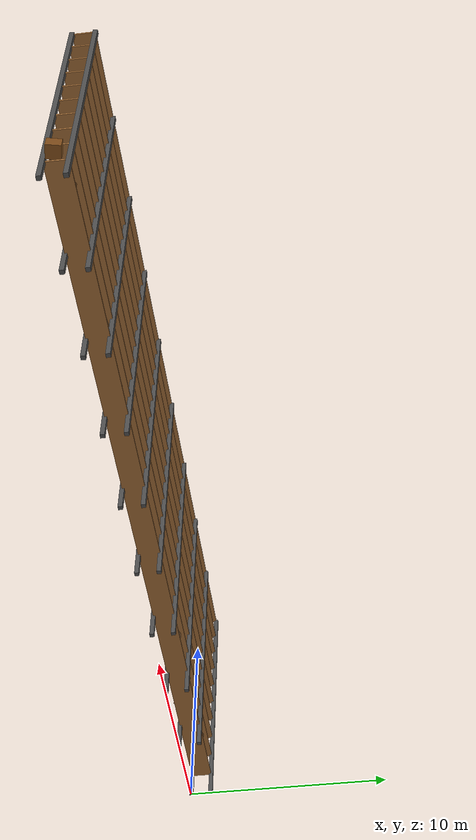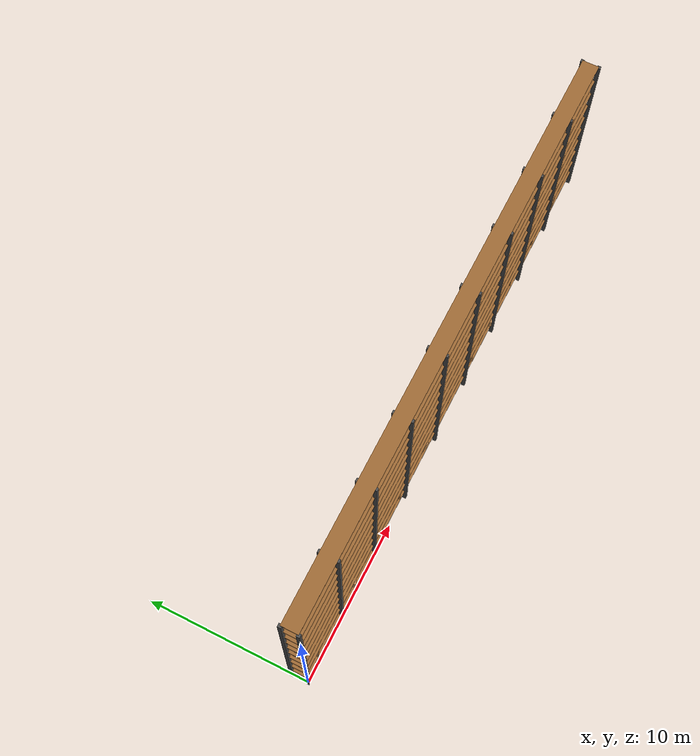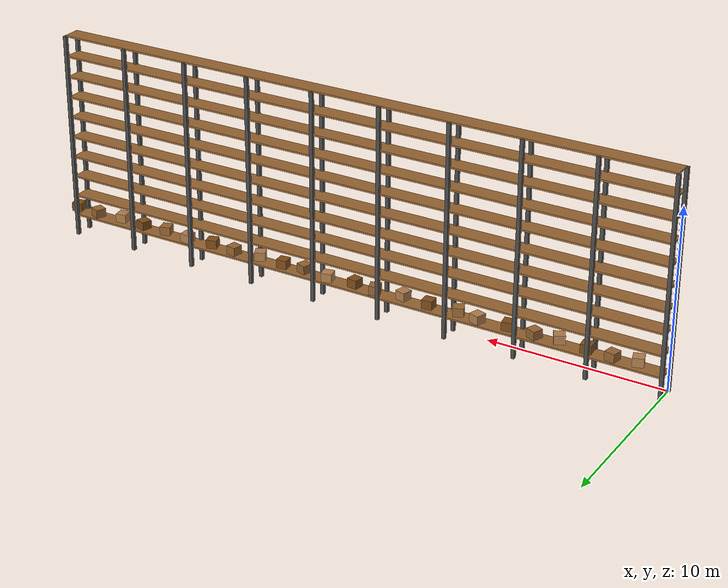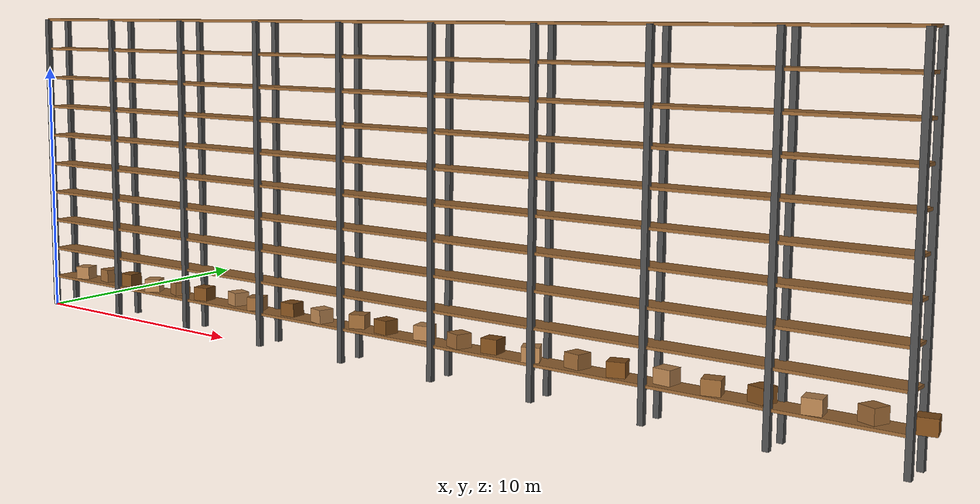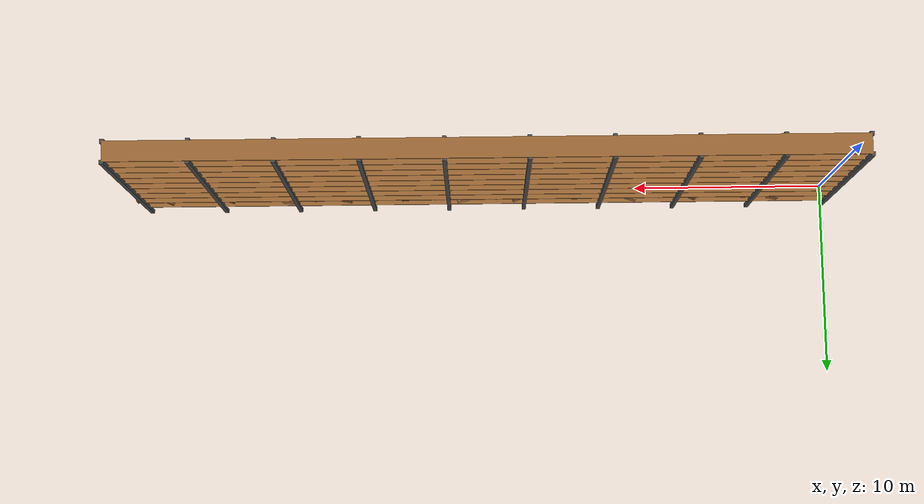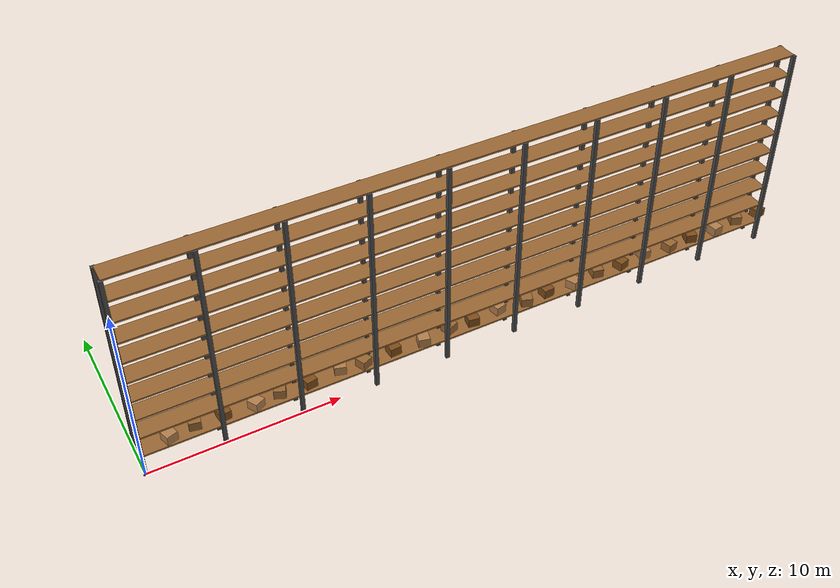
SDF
<?xml version="1.0"?>
<sdf version="1.9">
  <model name="warehouse_rack">
    <static>true</static>

    <!-- Rack Posts -->
    <link name="post_1">
      <pose>0 0 6 0 0 0</pose>
      <collision name="collision">
        <geometry>
          <box>
            <size>0.2 0.2 12</size>
          </box>
        </geometry>
      </collision>
      <visual name="visual">
        <geometry>
          <box>
            <size>0.2 0.2 12</size>
          </box>
        </geometry>
        <material>
          <ambient>0.3 0.3 0.3 1</ambient>
          <diffuse>0.3 0.3 0.3 1</diffuse>
        </material>
      </visual>
    </link>

    <link name="post_2">
      <pose>4 0 6 0 0 0</pose>
      <collision name="collision">
        <geometry>
          <box>
            <size>0.2 0.2 12</size>
          </box>
        </geometry>
      </collision>
      <visual name="visual">
        <geometry>
          <box>
            <size>0.2 0.2 12</size>
          </box>
        </geometry>
        <material>
          <ambient>0.3 0.3 0.3 1</ambient>
          <diffuse>0.3 0.3 0.3 1</diffuse>
        </material>
      </visual>
    </link>

    <link name="post_3">
      <pose>8 0 6 0 0 0</pose>
      <collision name="collision">
        <geometry>
          <box>
            <size>0.2 0.2 12</size>
          </box>
        </geometry>
      </collision>
      <visual name="visual">
        <geometry>
          <box>
            <size>0.2 0.2 12</size>
          </box>
        </geometry>
        <material>
          <ambient>0.3 0.3 0.3 1</ambient>
          <diffuse>0.3 0.3 0.3 1</diffuse>
        </material>
      </visual>
    </link>

    <link name="post_4">
      <pose>12 0 6 0 0 0</pose>
      <collision name="collision">
        <geometry>
          <box>
            <size>0.2 0.2 12</size>
          </box>
        </geometry>
      </collision>
      <visual name="visual">
        <geometry>
          <box>
            <size>0.2 0.2 12</size>
          </box>
        </geometry>
        <material>
          <ambient>0.3 0.3 0.3 1</ambient>
          <diffuse>0.3 0.3 0.3 1</diffuse>
        </material>
      </visual>
    </link>

    <link name="post_5">
      <pose>16 0 6 0 0 0</pose>
      <collision name="collision">
        <geometry>
          <box>
            <size>0.2 0.2 12</size>
          </box>
        </geometry>
      </collision>
      <visual name="visual">
        <geometry>
          <box>
            <size>0.2 0.2 12</size>
          </box>
        </geometry>
        <material>
          <ambient>0.3 0.3 0.3 1</ambient>
          <diffuse>0.3 0.3 0.3 1</diffuse>
        </material>
      </visual>
    </link>

    <link name="post_6">
      <pose>20 0 6 0 0 0</pose>
      <collision name="collision">
        <geometry>
          <box>
            <size>0.2 0.2 12</size>
          </box>
        </geometry>
      </collision>
      <visual name="visual">
        <geometry>
          <box>
            <size>0.2 0.2 12</size>
          </box>
        </geometry>
        <material>
          <ambient>0.3 0.3 0.3 1</ambient>
          <diffuse>0.3 0.3 0.3 1</diffuse>
        </material>
      </visual>
    </link>

    <link name="post_7">
      <pose>24 0 6 0 0 0</pose>
      <collision name="collision">
        <geometry>
          <box>
            <size>0.2 0.2 12</size>
          </box>
        </geometry>
      </collision>
      <visual name="visual">
        <geometry>
          <box>
            <size>0.2 0.2 12</size>
          </box>
        </geometry>
        <material>
          <ambient>0.3 0.3 0.3 1</ambient>
          <diffuse>0.3 0.3 0.3 1</diffuse>
        </material>
      </visual>
    </link>

    <link name="post_8">
      <pose>28 0 6 0 0 0</pose>
      <collision name="collision">
        <geometry>
          <box>
            <size>0.2 0.2 12</size>
          </box>
        </geometry>
      </collision>
      <visual name="visual">
        <geometry>
          <box>
            <size>0.2 0.2 12</size>
          </box>
        </geometry>
        <material>
          <ambient>0.3 0.3 0.3 1</ambient>
          <diffuse>0.3 0.3 0.3 1</diffuse>
        </material>
      </visual>
    </link>

    <link name="post_9">
      <pose>32 0 6 0 0 0</pose>
      <collision name="collision">
        <geometry>
          <box>
            <size>0.2 0.2 12</size>
          </box>
        </geometry>
      </collision>
      <visual name="visual">
        <geometry>
          <box>
            <size>0.2 0.2 12</size>
          </box>
        </geometry>
        <material>
          <ambient>0.3 0.3 0.3 1</ambient>
          <diffuse>0.3 0.3 0.3 1</diffuse>
        </material>
      </visual>
    </link>

    <link name="post_10">
      <pose>36 0 6 0 0 0</pose>
      <collision name="collision">
        <geometry>
          <box>
            <size>0.2 0.2 12</size>
          </box>
        </geometry>
      </collision>
      <visual name="visual">
        <geometry>
          <box>
            <size>0.2 0.2 12</size>
          </box>
        </geometry>
        <material>
          <ambient>0.3 0.3 0.3 1</ambient>
          <diffuse>0.3 0.3 0.3 1</diffuse>
        </material>
      </visual>
    </link>

    <!-- Posts on the other side -->
    <link name="post_11">
      <pose>0 1 6 0 0 0</pose>
      <collision name="collision">
        <geometry>
          <box>
            <size>0.2 0.2 12</size>
          </box>
        </geometry>
      </collision>
      <visual name="visual">
        <geometry>
          <box>
            <size>0.2 0.2 12</size>
          </box>
        </geometry>
        <material>
          <ambient>0.3 0.3 0.3 1</ambient>
          <diffuse>0.3 0.3 0.3 1</diffuse>
        </material>
      </visual>
    </link>

    <link name="post_12">
      <pose>4 1 6 0 0 0</pose>
      <collision name="collision">
        <geometry>
          <box>
            <size>0.2 0.2 12</size>
          </box>
        </geometry>
      </collision>
      <visual name="visual">
        <geometry>
          <box>
            <size>0.2 0.2 12</size>
          </box>
        </geometry>
        <material>
          <ambient>0.3 0.3 0.3 1</ambient>
          <diffuse>0.3 0.3 0.3 1</diffuse>
        </material>
      </visual>
    </link>

    <link name="post_13">
      <pose>8 1 6 0 0 0</pose>
      <collision name="collision">
        <geometry>
          <box>
            <size>0.2 0.2 12</size>
          </box>
        </geometry>
      </collision>
      <visual name="visual">
        <geometry>
          <box>
            <size>0.2 0.2 12</size>
          </box>
        </geometry>
        <material>
          <ambient>0.3 0.3 0.3 1</ambient>
          <diffuse>0.3 0.3 0.3 1</diffuse>
        </material>
      </visual>
    </link>

    <link name="post_14">
      <pose>12 1 6 0 0 0</pose>
      <collision name="collision">
        <geometry>
          <box>
            <size>0.2 0.2 12</size>
          </box>
        </geometry>
      </collision>
      <visual name="visual">
        <geometry>
          <box>
            <size>0.2 0.2 12</size>
          </box>
        </geometry>
        <material>
          <ambient>0.3 0.3 0.3 1</ambient>
          <diffuse>0.3 0.3 0.3 1</diffuse>
        </material>
      </visual>
    </link>

    <link name="post_15">
      <pose>16 1 6 0 0 0</pose>
      <collision name="collision">
        <geometry>
          <box>
            <size>0.2 0.2 12</size>
          </box>
        </geometry>
      </collision>
      <visual name="visual">
        <geometry>
          <box>
            <size>0.2 0.2 12</size>
          </box>
        </geometry>
        <material>
          <ambient>0.3 0.3 0.3 1</ambient>
          <diffuse>0.3 0.3 0.3 1</diffuse>
        </material>
      </visual>
    </link>

    <link name="post_16">
      <pose>20 1 6 0 0 0</pose>
      <collision name="collision">
        <geometry>
          <box>
            <size>0.2 0.2 12</size>
          </box>
        </geometry>
      </collision>
      <visual name="visual">
        <geometry>
          <box>
            <size>0.2 0.2 12</size>
          </box>
        </geometry>
        <material>
          <ambient>0.3 0.3 0.3 1</ambient>
          <diffuse>0.3 0.3 0.3 1</diffuse>
        </material>
      </visual>
    </link>

    <link name="post_17">
      <pose>24 1 6 0 0 0</pose>
      <collision name="collision">
        <geometry>
          <box>
            <size>0.2 0.2 12</size>
          </box>
        </geometry>
      </collision>
      <visual name="visual">
        <geometry>
          <box>
            <size>0.2 0.2 12</size>
          </box>
        </geometry>
        <material>
          <ambient>0.3 0.3 0.3 1</ambient>
          <diffuse>0.3 0.3 0.3 1</diffuse>
        </material>
      </visual>
    </link>

    <link name="post_18">
      <pose>28 1 6 0 0 0</pose>
      <collision name="collision">
        <geometry>
          <box>
            <size>0.2 0.2 12</size>
          </box>
        </geometry>
      </collision>
      <visual name="visual">
        <geometry>
          <box>
            <size>0.2 0.2 12</size>
          </box>
        </geometry>
        <material>
          <ambient>0.3 0.3 0.3 1</ambient>
          <diffuse>0.3 0.3 0.3 1</diffuse>
        </material>
      </visual>
    </link>

    <link name="post_19">
      <pose>32 1 6 0 0 0</pose>
      <collision name="collision">
        <geometry>
          <box>
            <size>0.2 0.2 12</size>
          </box>
        </geometry>
      </collision>
      <visual name="visual">
        <geometry>
          <box>
            <size>0.2 0.2 12</size>
          </box>
        </geometry>
        <material>
          <ambient>0.3 0.3 0.3 1</ambient>
          <diffuse>0.3 0.3 0.3 1</diffuse>
        </material>
      </visual>
    </link>

    <link name="post_20">
      <pose>36 1 6 0 0 0</pose>
      <collision name="collision">
        <geometry>
          <box>
            <size>0.2 0.2 12</size>
          </box>
        </geometry>
      </collision>
      <visual name="visual">
        <geometry>
          <box>
            <size>0.2 0.2 12</size>
          </box>
        </geometry>
        <material>
          <ambient>0.3 0.3 0.3 1</ambient>
          <diffuse>0.3 0.3 0.3 1</diffuse>
        </material>
      </visual>
    </link>

    <!-- Rack shelves -->
    <link name="shelf_1">
      <pose>18 0.5 1.2 0 0 0</pose>
      <collision name="collision">
        <geometry>
          <box>
            <size>36 1 0.1</size>
          </box>
        </geometry>
      </collision>
      <visual name="visual">
        <geometry>
          <box>
            <size>36 1 0.1</size>
          </box>
        </geometry>
        <material>
          <ambient>0.6 0.4 0.2 1</ambient>
          <diffuse>0.6 0.4 0.2 1</diffuse>
        </material>
      </visual>
    </link>

    <!-- Boxes on shelf 1 -->
    <link name="box_1_1">
      <pose>1.5 0.4 1.5 0 0 0.3</pose>
      <collision name="collision">
        <geometry>
          <box>
            <size>0.6 0.6 0.5</size>
          </box>
        </geometry>
      </collision>
      <visual name="visual">
        <geometry>
          <box>
            <size>0.6 0.6 0.5</size>
          </box>
        </geometry>
        <material>
          <ambient>0.7 0.5 0.3 1</ambient>
          <diffuse>0.7 0.5 0.3 1</diffuse>
        </material>
      </visual>
    </link>

    <link name="box_1_2">
      <pose>2.8 0.6 1.5 0 0 -0.2</pose>
      <collision name="collision">
        <geometry>
          <box>
            <size>0.6 0.6 0.5</size>
          </box>
        </geometry>
      </collision>
      <visual name="visual">
        <geometry>
          <box>
            <size>0.6 0.6 0.5</size>
          </box>
        </geometry>
        <material>
          <ambient>0.6 0.4 0.2 1</ambient>
          <diffuse>0.6 0.4 0.2 1</diffuse>
        </material>
      </visual>
    </link>

    <link name="box_1_3">
      <pose>4.2 0.5 1.5 0 0 0.1</pose>
      <collision name="collision">
        <geometry>
          <box>
            <size>0.6 0.6 0.5</size>
          </box>
        </geometry>
      </collision>
      <visual name="visual">
        <geometry>
          <box>
            <size>0.6 0.6 0.5</size>
          </box>
        </geometry>
        <material>
          <ambient>0.5 0.3 0.1 1</ambient>
          <diffuse>0.5 0.3 0.1 1</diffuse>
        </material>
      </visual>
    </link>

    <link name="box_1_4">
      <pose>5.8 0.35 1.5 0 0 0.5</pose>
      <collision name="collision">
        <geometry>
          <box>
            <size>0.6 0.6 0.5</size>
          </box>
        </geometry>
      </collision>
      <visual name="visual">
        <geometry>
          <box>
            <size>0.6 0.6 0.5</size>
          </box>
        </geometry>
        <material>
          <ambient>0.7 0.5 0.3 1</ambient>
          <diffuse>0.7 0.5 0.3 1</diffuse>
        </material>
      </visual>
    </link>

    <link name="box_1_5">
      <pose>7.1 0.55 1.5 0 0 -0.4</pose>
      <collision name="collision">
        <geometry>
          <box>
            <size>0.6 0.6 0.5</size>
          </box>
        </geometry>
      </collision>
      <visual name="visual">
        <geometry>
          <box>
            <size>0.6 0.6 0.5</size>
          </box>
        </geometry>
        <material>
          <ambient>0.6 0.4 0.2 1</ambient>
          <diffuse>0.6 0.4 0.2 1</diffuse>
        </material>
      </visual>
    </link>

    <link name="box_1_6">
      <pose>8.6 0.45 1.5 0 0 0.15</pose>
      <collision name="collision">
        <geometry>
          <box>
            <size>0.6 0.6 0.5</size>
          </box>
        </geometry>
      </collision>
      <visual name="visual">
        <geometry>
          <box>
            <size>0.6 0.6 0.5</size>
          </box>
        </geometry>
        <material>
          <ambient>0.5 0.3 0.1 1</ambient>
          <diffuse>0.5 0.3 0.1 1</diffuse>
        </material>
      </visual>
    </link>

    <link name="box_1_7">
      <pose>10.3 0.6 1.5 0 0 -0.3</pose>
      <collision name="collision">
        <geometry>
          <box>
            <size>0.6 0.6 0.5</size>
          </box>
        </geometry>
      </collision>
      <visual name="visual">
        <geometry>
          <box>
            <size>0.6 0.6 0.5</size>
          </box>
        </geometry>
        <material>
          <ambient>0.7 0.5 0.3 1</ambient>
          <diffuse>0.7 0.5 0.3 1</diffuse>
        </material>
      </visual>
    </link>

    <link name="box_1_8">
      <pose>11.5 0.4 1.5 0 0 0.4</pose>
      <collision name="collision">
        <geometry>
          <box>
            <size>0.6 0.6 0.5</size>
          </box>
        </geometry>
      </collision>
      <visual name="visual">
        <geometry>
          <box>
            <size>0.6 0.6 0.5</size>
          </box>
        </geometry>
        <material>
          <ambient>0.6 0.4 0.2 1</ambient>
          <diffuse>0.6 0.4 0.2 1</diffuse>
        </material>
      </visual>
    </link>

    <link name="box_1_9">
      <pose>13.2 0.5 1.5 0 0 0.05</pose>
      <collision name="collision">
        <geometry>
          <box>
            <size>0.6 0.6 0.5</size>
          </box>
        </geometry>
      </collision>
      <visual name="visual">
        <geometry>
          <box>
            <size>0.6 0.6 0.5</size>
          </box>
        </geometry>
        <material>
          <ambient>0.5 0.3 0.1 1</ambient>
          <diffuse>0.5 0.3 0.1 1</diffuse>
        </material>
      </visual>
    </link>

    <link name="box_1_10">
      <pose>14.8 0.35 1.5 0 0 -0.25</pose>
      <collision name="collision">
        <geometry>
          <box>
            <size>0.6 0.6 0.5</size>
          </box>
        </geometry>
      </collision>
      <visual name="visual">
        <geometry>
          <box>
            <size>0.6 0.6 0.5</size>
          </box>
        </geometry>
        <material>
          <ambient>0.7 0.5 0.3 1</ambient>
          <diffuse>0.7 0.5 0.3 1</diffuse>
        </material>
      </visual>
    </link>

    <link name="box_1_11">
      <pose>16.4 0.55 1.5 0 0 0.35</pose>
      <collision name="collision">
        <geometry>
          <box>
            <size>0.6 0.6 0.5</size>
          </box>
        </geometry>
      </collision>
      <visual name="visual">
        <geometry>
          <box>
            <size>0.6 0.6 0.5</size>
          </box>
        </geometry>
        <material>
          <ambient>0.6 0.4 0.2 1</ambient>
          <diffuse>0.6 0.4 0.2 1</diffuse>
        </material>
      </visual>
    </link>

    <link name="box_1_12">
      <pose>17.7 0.45 1.5 0 0 -0.15</pose>
      <collision name="collision">
        <geometry>
          <box>
            <size>0.6 0.6 0.5</size>
          </box>
        </geometry>
      </collision>
      <visual name="visual">
        <geometry>
          <box>
            <size>0.6 0.6 0.5</size>
          </box>
        </geometry>
        <material>
          <ambient>0.5 0.3 0.1 1</ambient>
          <diffuse>0.5 0.3 0.1 1</diffuse>
        </material>
      </visual>
    </link>

    <link name="box_1_13">
      <pose>19.3 0.6 1.5 0 0 0.2</pose>
      <collision name="collision">
        <geometry>
          <box>
            <size>0.6 0.6 0.5</size>
          </box>
        </geometry>
      </collision>
      <visual name="visual">
        <geometry>
          <box>
            <size>0.6 0.6 0.5</size>
          </box>
        </geometry>
        <material>
          <ambient>0.7 0.5 0.3 1</ambient>
          <diffuse>0.7 0.5 0.3 1</diffuse>
        </material>
      </visual>
    </link>

    <link name="box_1_14">
      <pose>20.9 0.4 1.5 0 0 -0.35</pose>
      <collision name="collision">
        <geometry>
          <box>
            <size>0.6 0.6 0.5</size>
          </box>
        </geometry>
      </collision>
      <visual name="visual">
        <geometry>
          <box>
            <size>0.6 0.6 0.5</size>
          </box>
        </geometry>
        <material>
          <ambient>0.6 0.4 0.2 1</ambient>
          <diffuse>0.6 0.4 0.2 1</diffuse>
        </material>
      </visual>
    </link>

    <link name="box_1_15">
      <pose>22.2 0.5 1.5 0 0 0.1</pose>
      <collision name="collision">
        <geometry>
          <box>
            <size>0.6 0.6 0.5</size>
          </box>
        </geometry>
      </collision>
      <visual name="visual">
        <geometry>
          <box>
            <size>0.6 0.6 0.5</size>
          </box>
        </geometry>
        <material>
          <ambient>0.5 0.3 0.1 1</ambient>
          <diffuse>0.5 0.3 0.1 1</diffuse>
        </material>
      </visual>
    </link>

    <link name="box_1_16">
      <pose>23.8 0.35 1.5 0 0 0.45</pose>
      <collision name="collision">
        <geometry>
          <box>
            <size>0.6 0.6 0.5</size>
          </box>
        </geometry>
      </collision>
      <visual name="visual">
        <geometry>
          <box>
            <size>0.6 0.6 0.5</size>
          </box>
        </geometry>
        <material>
          <ambient>0.7 0.5 0.3 1</ambient>
          <diffuse>0.7 0.5 0.3 1</diffuse>
        </material>
      </visual>
    </link>

    <link name="box_1_17">
      <pose>25.4 0.55 1.5 0 0 -0.2</pose>
      <collision name="collision">
        <geometry>
          <box>
            <size>0.6 0.6 0.5</size>
          </box>
        </geometry>
      </collision>
      <visual name="visual">
        <geometry>
          <box>
            <size>0.6 0.6 0.5</size>
          </box>
        </geometry>
        <material>
          <ambient>0.6 0.4 0.2 1</ambient>
          <diffuse>0.6 0.4 0.2 1</diffuse>
        </material>
      </visual>
    </link>

    <link name="box_1_18">
      <pose>26.9 0.45 1.5 0 0 0.3</pose>
      <collision name="collision">
        <geometry>
          <box>
            <size>0.6 0.6 0.5</size>
          </box>
        </geometry>
      </collision>
      <visual name="visual">
        <geometry>
          <box>
            <size>0.6 0.6 0.5</size>
          </box>
        </geometry>
        <material>
          <ambient>0.5 0.3 0.1 1</ambient>
          <diffuse>0.5 0.3 0.1 1</diffuse>
        </material>
      </visual>
    </link>

    <link name="box_1_19">
      <pose>28.5 0.6 1.5 0 0 -0.1</pose>
      <collision name="collision">
        <geometry>
          <box>
            <size>0.6 0.6 0.5</size>
          </box>
        </geometry>
      </collision>
      <visual name="visual">
        <geometry>
          <box>
            <size>0.6 0.6 0.5</size>
          </box>
        </geometry>
        <material>
          <ambient>0.7 0.5 0.3 1</ambient>
          <diffuse>0.7 0.5 0.3 1</diffuse>
        </material>
      </visual>
    </link>

    <link name="box_1_20">
      <pose>30.1 0.4 1.5 0 0 0.25</pose>
      <collision name="collision">
        <geometry>
          <box>
            <size>0.6 0.6 0.5</size>
          </box>
        </geometry>
      </collision>
      <visual name="visual">
        <geometry>
          <box>
            <size>0.6 0.6 0.5</size>
          </box>
        </geometry>
        <material>
          <ambient>0.6 0.4 0.2 1</ambient>
          <diffuse>0.6 0.4 0.2 1</diffuse>
        </material>
      </visual>
    </link>

    <link name="box_1_21">
      <pose>31.6 0.5 1.5 0 0 -0.3</pose>
      <collision name="collision">
        <geometry>
          <box>
            <size>0.6 0.6 0.5</size>
          </box>
        </geometry>
      </collision>
      <visual name="visual">
        <geometry>
          <box>
            <size>0.6 0.6 0.5</size>
          </box>
        </geometry>
        <material>
          <ambient>0.5 0.3 0.1 1</ambient>
          <diffuse>0.5 0.3 0.1 1</diffuse>
        </material>
      </visual>
    </link>

    <link name="box_1_22">
      <pose>33.2 0.35 1.5 0 0 0.15</pose>
      <collision name="collision">
        <geometry>
          <box>
            <size>0.6 0.6 0.5</size>
          </box>
        </geometry>
      </collision>
      <visual name="visual">
        <geometry>
          <box>
            <size>0.6 0.6 0.5</size>
          </box>
        </geometry>
        <material>
          <ambient>0.7 0.5 0.3 1</ambient>
          <diffuse>0.7 0.5 0.3 1</diffuse>
        </material>
      </visual>
    </link>

    <link name="box_1_23">
      <pose>34.8 0.55 1.5 0 0 -0.4</pose>
      <collision name="collision">
        <geometry>
          <box>
            <size>0.6 0.6 0.5</size>
          </box>
        </geometry>
      </collision>
      <visual name="visual">
        <geometry>
          <box>
            <size>0.6 0.6 0.5</size>
          </box>
        </geometry>
        <material>
          <ambient>0.6 0.4 0.2 1</ambient>
          <diffuse>0.6 0.4 0.2 1</diffuse>
        </material>
      </visual>
    </link>

    <link name="box_1_24">
      <pose>36.3 0.45 1.5 0 0 0.2</pose>
      <collision name="collision">
        <geometry>
          <box>
            <size>0.6 0.6 0.5</size>
          </box>
        </geometry>
      </collision>
      <visual name="visual">
        <geometry>
          <box>
            <size>0.6 0.6 0.5</size>
          </box>
        </geometry>
        <material>
          <ambient>0.5 0.3 0.1 1</ambient>
          <diffuse>0.5 0.3 0.1 1</diffuse>
        </material>
      </visual>
    </link>

    <link name="shelf_2">
      <pose>18 0.5 2.4 0 0 0</pose>
      <collision name="collision">
        <geometry>
          <box>
            <size>36 1 0.1</size>
          </box>
        </geometry>
      </collision>
      <visual name="visual">
        <geometry>
          <box>
            <size>36 1 0.1</size>
          </box>
        </geometry>
        <material>
          <ambient>0.6 0.4 0.2 1</ambient>
          <diffuse>0.6 0.4 0.2 1</diffuse>
        </material>
      </visual>
    </link>

    <link name="shelf_3">
      <pose>18 0.5 3.6 0 0 0</pose>
      <collision name="collision">
        <geometry>
          <box>
            <size>36 1 0.1</size>
          </box>
        </geometry>
      </collision>
      <visual name="visual">
        <geometry>
          <box>
            <size>36 1 0.1</size>
          </box>
        </geometry>
        <material>
          <ambient>0.6 0.4 0.2 1</ambient>
          <diffuse>0.6 0.4 0.2 1</diffuse>
        </material>
      </visual>
    </link>

    <link name="shelf_4">
      <pose>18 0.5 4.8 0 0 0</pose>
      <collision name="collision">
        <geometry>
          <box>
            <size>36 1 0.1</size>
          </box>
        </geometry>
      </collision>
      <visual name="visual">
        <geometry>
          <box>
            <size>36 1 0.1</size>
          </box>
        </geometry>
        <material>
          <ambient>0.6 0.4 0.2 1</ambient>
          <diffuse>0.6 0.4 0.2 1</diffuse>
        </material>
      </visual>
    </link>

    <link name="shelf_5">
      <pose>18 0.5 6 0 0 0</pose>
      <collision name="collision">
        <geometry>
          <box>
            <size>36 1 0.1</size>
          </box>
        </geometry>
      </collision>
      <visual name="visual">
        <geometry>
          <box>
            <size>36 1 0.1</size>
          </box>
        </geometry>
        <material>
          <ambient>0.6 0.4 0.2 1</ambient>
          <diffuse>0.6 0.4 0.2 1</diffuse>
        </material>
      </visual>
    </link>

    <link name="shelf_6">
      <pose>18 0.5 7.2 0 0 0</pose>
      <collision name="collision">
        <geometry>
          <box>
            <size>36 1 0.1</size>
          </box>
        </geometry>
      </collision>
      <visual name="visual">
        <geometry>
          <box>
            <size>36 1 0.1</size>
          </box>
        </geometry>
        <material>
          <ambient>0.6 0.4 0.2 1</ambient>
          <diffuse>0.6 0.4 0.2 1</diffuse>
        </material>
      </visual>
    </link>

    <link name="shelf_7">
      <pose>18 0.5 8.4 0 0 0</pose>
      <collision name="collision">
        <geometry>
          <box>
            <size>36 1 0.1</size>
          </box>
        </geometry>
      </collision>
      <visual name="visual">
        <geometry>
          <box>
            <size>36 1 0.1</size>
          </box>
        </geometry>
        <material>
          <ambient>0.6 0.4 0.2 1</ambient>
          <diffuse>0.6 0.4 0.2 1</diffuse>
        </material>
      </visual>
    </link>

    <link name="shelf_8">
      <pose>18 0.5 9.6 0 0 0</pose>
      <collision name="collision">
        <geometry>
          <box>
            <size>36 1 0.1</size>
          </box>
        </geometry>
      </collision>
      <visual name="visual">
        <geometry>
          <box>
            <size>36 1 0.1</size>
          </box>
        </geometry>
        <material>
          <ambient>0.6 0.4 0.2 1</ambient>
          <diffuse>0.6 0.4 0.2 1</diffuse>
        </material>
      </visual>
    </link>

    <link name="shelf_9">
      <pose>18 0.5 10.8 0 0 0</pose>
      <collision name="collision">
        <geometry>
          <box>
            <size>36 1 0.1</size>
          </box>
        </geometry>
      </collision>
      <visual name="visual">
        <geometry>
          <box>
            <size>36 1 0.1</size>
          </box>
        </geometry>
        <material>
          <ambient>0.6 0.4 0.2 1</ambient>
          <diffuse>0.6 0.4 0.2 1</diffuse>
        </material>
      </visual>
    </link>

    <link name="shelf_10">
      <pose>18 0.5 12 0 0 0</pose>
      <collision name="collision">
        <geometry>
          <box>
            <size>36 1 0.1</size>
          </box>
        </geometry>
      </collision>
      <visual name="visual">
        <geometry>
          <box>
            <size>36 1 0.1</size>
          </box>
        </geometry>
        <material>
          <ambient>0.6 0.4 0.2 1</ambient>
          <diffuse>0.6 0.4 0.2 1</diffuse>
        </material>
      </visual>
    </link>

  </model>
</sdf>
